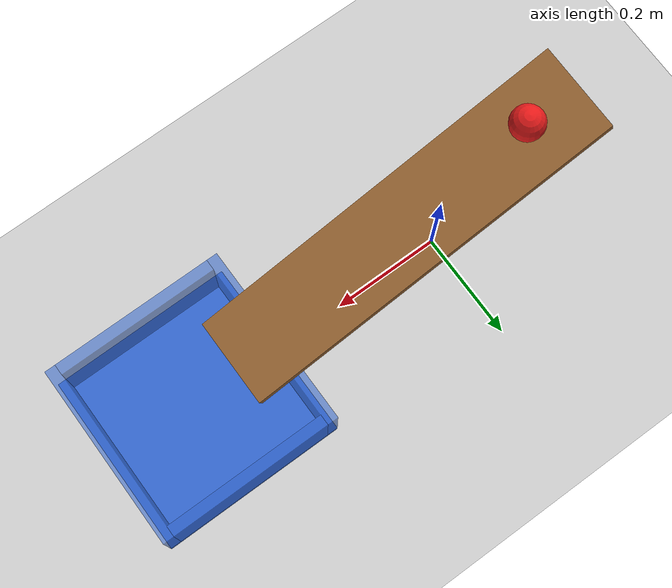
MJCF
<mujoco model="ramp_ball_cup">
  <compiler angle="degree"/>
  <option timestep="0.002" gravity="0 0 -9.81"/>
  <worldbody>
    <light name="sun" pos="0 0 3" dir="0 0 -1"/>
    <geom name="floor" type="plane" size="2 2 0.1" rgba="0.8 0.8 0.8 1"/>
    <geom name="ramp" type="box" pos="0.0793 0 0.2209" euler="0 15 0" size="0.35 0.08 0.01" friction="1 0.005 0.0001" rgba="0.6 0.4 0.2 1"/>
    <geom name="ramp_post" type="box" pos="-0.22 0 0.145" size="0.01 0.03 0.145" rgba="0.5 0.3 0.15 1"/>
    <body name="cup" pos="0.5 0 0">
      <geom name="cup_bottom" type="box" pos="0 0 0.005" size="0.17 0.17 0.005" friction="1 0.01 0.01" condim="6" rgba="0.2 0.4 0.8 1"/>
      <geom name="cup_wall_near" type="box" pos="-0.16 0 0.065" size="0.01 0.17 0.055" friction="1 0.01 0.01" condim="6" rgba="0.2 0.4 0.8 0.6"/>
      <geom name="cup_wall_far" type="box" pos="0.16 0 0.065" size="0.01 0.17 0.055" friction="1 0.01 0.01" condim="6" rgba="0.2 0.4 0.8 0.6"/>
      <geom name="cup_wall_left" type="box" pos="0 0.16 0.065" size="0.15 0.01 0.055" friction="1 0.01 0.01" condim="6" rgba="0.2 0.4 0.8 0.6"/>
      <geom name="cup_wall_right" type="box" pos="0 -0.16 0.065" size="0.15 0.01 0.055" friction="1 0.01 0.01" condim="6" rgba="0.2 0.4 0.8 0.6"/>
    </body>
    <body name="ball" pos="-0.1518 0 0.3253">
      <freejoint name="ball_free"/>
      <geom name="ball" type="sphere" size="0.03" friction="1 0.005 0.0001" rgba="0.9 0.1 0.1 1"/>
    </body>
  </worldbody>
  <keyframe>
    <key name="start" qpos="-0.1518 0 0.3253 1 0 0 0"/>
  </keyframe>
</mujoco>
